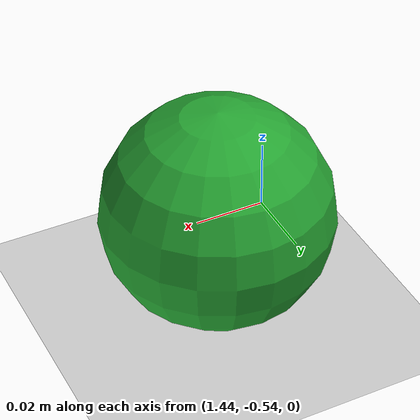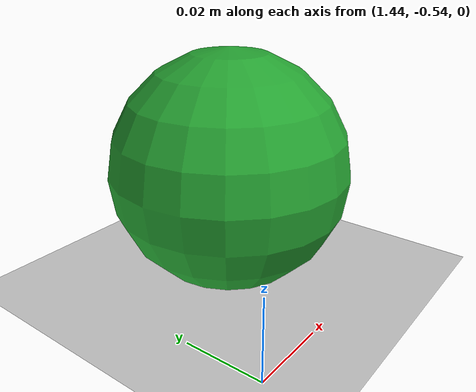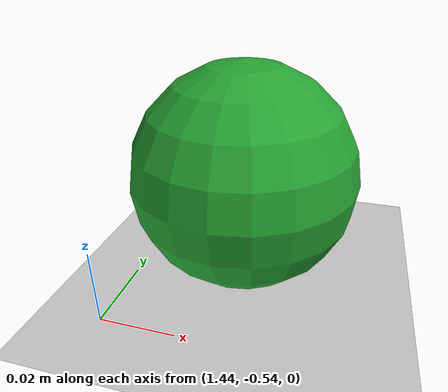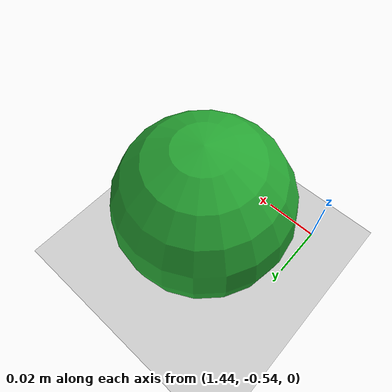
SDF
<sdf version="1.7">
 <world name="default">
  <light name="sun" type="directional">
   <pose>0 0 10 0 -0 0</pose>
   <diffuse>0.8 0.8 0.8 1</diffuse>
   <specular>0.1 0.1 0.1 1</specular>
   <attenuation>
    <range>1000</range>
    <constant>0.9</constant>
    <linear>0.01</linear>
    <quadratic>0.001</quadratic>
   </attenuation>
   <direction>-0.5 0.5 -1</direction>
   <spot><inner_angle>0</inner_angle><outer_angle>0</outer_angle><falloff>0</falloff></spot>
  </light>
  <model name="ground_plane">
   <static>1</static>
   <link name="link">
    <collision name="collision">
     <geometry><plane><normal>0 0 1</normal><size>100 100</size></plane></geometry>
     <surface><friction><ode><mu>100</mu><mu2>50</mu2></ode></friction></surface>
    </collision>
    <visual name="visual">
     <cast_shadows>0</cast_shadows>
     <geometry><plane><normal>0 0 1</normal><size>100 100</size></plane></geometry>
     <material>
      <script><uri>file://media/materials/scripts/gazebo.material</uri><name>Gazebo/Grey</name></script>
     </material>
    </visual>
   </link>
  </model>
  <gravity>0 0 -9.8</gravity>
  <magnetic_field>6e-06 2.3e-05 -4.2e-05</magnetic_field>
  <atmosphere type="adiabatic"/>
  <physics name="default_physics" default="0" type="ode">
   <max_step_size>0.001</max_step_size>
   <real_time_factor>1</real_time_factor>
   <real_time_update_rate>1000</real_time_update_rate>
  </physics>
  <scene><ambient>0.4 0.4 0.4 1</ambient><background>0.7 0.7 0.7 1</background><shadows>1</shadows></scene>
  <spherical_coordinates>
   <surface_model>EARTH_WGS84</surface_model>
   <latitude_deg>0</latitude_deg>
   <longitude_deg>0</longitude_deg>
   <elevation>0</elevation>
   <heading_deg>0</heading_deg>
  </spherical_coordinates>
  <audio><device>default</device></audio>
  <model name="green_ball">
   <link name="link">
    <inertial>
     <mass>0.02</mass>
     <inertia><ixx>7.2e-06</ixx><ixy>0</ixy><ixz>0</ixz><iyy>7.2e-06</iyy><iyz>0</iyz><izz>7.2e-06</izz></inertia>
    </inertial>
    <visual name="visual">
     <geometry><sphere><radius>0.03</radius></sphere></geometry>
     <material>
      <script><name>Gazebo/Green</name><uri>file://media/materials/scripts/gazebo.material</uri></script>
      <shader type="pixel"><normal_map>__default__</normal_map></shader>
      <ambient>0 1 0 1</ambient>
      <diffuse>0 1 0 1</diffuse>
      <specular>0.1 0.1 0.1 1</specular>
      <emissive>0 0 0 1</emissive>
     </material>
    </visual>
    <collision name="collision">
     <geometry><sphere><radius>0.03</radius></sphere></geometry>
     <surface>
      <friction>
       <ode><mu>1</mu><mu2>1</mu2><fdir1>0 0 0</fdir1><slip1>0</slip1><slip2>0</slip2></ode>
       <torsional>
        <coefficient>1</coefficient>
        <patch_radius>0</patch_radius>
        <surface_radius>0</surface_radius>
        <use_patch_radius>1</use_patch_radius>
        <ode><slip>0</slip></ode>
       </torsional>
      </friction>
      <bounce><restitution_coefficient>0</restitution_coefficient><threshold>1e+06</threshold></bounce>
      <contact>
       <collide_without_contact>0</collide_without_contact>
       <collide_without_contact_bitmask>1</collide_without_contact_bitmask>
       <collide_bitmask>1</collide_bitmask>
       <ode>
        <soft_cfm>0</soft_cfm>
        <soft_erp>0.2</soft_erp>
        <kp>1e+13</kp>
        <kd>1</kd>
        <max_vel>0.01</max_vel>
        <min_depth>0</min_depth>
       </ode>
       <bullet>
        <split_impulse>1</split_impulse>
        <split_impulse_penetration_threshold>-0.01</split_impulse_penetration_threshold>
        <soft_cfm>0</soft_cfm>
        <soft_erp>0.2</soft_erp>
        <kp>1e+13</kp>
        <kd>1</kd>
       </bullet>
      </contact>
     </surface>
    </collision>
   </link>
   <static>0</static>
   <pose>1.46921 -0.509175 0.03 0 -0 0</pose>
  </model>
  <model name="green_ball">
   <link name="link">
    <inertial>
     <mass>0.02</mass>
     <inertia><ixx>7.2e-06</ixx><ixy>0</ixy><ixz>0</ixz><iyy>7.2e-06</iyy><iyz>0</iyz><izz>7.2e-06</izz></inertia>
    </inertial>
    <visual name="visual">
     <geometry><sphere><radius>0.03</radius></sphere></geometry>
     <material>
      <script><name>Gazebo/Green</name><uri>file://media/materials/scripts/gazebo.material</uri></script>
      <shader type="pixel"><normal_map>__default__</normal_map></shader>
      <ambient>0 1 0 1</ambient>
      <diffuse>0 1 0 1</diffuse>
      <specular>0.1 0.1 0.1 1</specular>
      <emissive>0 0 0 1</emissive>
     </material>
    </visual>
    <collision name="collision">
     <geometry><sphere><radius>0.03</radius></sphere></geometry>
     <surface>
      <friction>
       <ode><mu>1</mu><mu2>1</mu2><fdir1>0 0 0</fdir1><slip1>0</slip1><slip2>0</slip2></ode>
       <torsional>
        <coefficient>1</coefficient>
        <patch_radius>0</patch_radius>
        <surface_radius>0</surface_radius>
        <use_patch_radius>1</use_patch_radius>
        <ode><slip>0</slip></ode>
       </torsional>
      </friction>
      <bounce><restitution_coefficient>0</restitution_coefficient><threshold>1e+06</threshold></bounce>
      <contact>
       <collide_without_contact>0</collide_without_contact>
       <collide_without_contact_bitmask>1</collide_without_contact_bitmask>
       <collide_bitmask>1</collide_bitmask>
       <ode>
        <soft_cfm>0</soft_cfm>
        <soft_erp>0.2</soft_erp>
        <kp>1e+13</kp>
        <kd>1</kd>
        <max_vel>0.01</max_vel>
        <min_depth>0</min_depth>
       </ode>
       <bullet>
        <split_impulse>1</split_impulse>
        <split_impulse_penetration_threshold>-0.01</split_impulse_penetration_threshold>
        <soft_cfm>0</soft_cfm>
        <soft_erp>0.2</soft_erp>
        <kp>1e+13</kp>
        <kd>1</kd>
       </bullet>
      </contact>
     </surface>
    </collision>
   </link>
   <static>0</static>
   <pose>1.46921 -0.509175 0.03 0 -0 0</pose>
  </model>
  <model name="green_ball">
   <link name="link">
    <inertial>
     <mass>0.02</mass>
     <inertia><ixx>7.2e-06</ixx><ixy>0</ixy><ixz>0</ixz><iyy>7.2e-06</iyy><iyz>0</iyz><izz>7.2e-06</izz></inertia>
    </inertial>
    <visual name="visual">
     <geometry><sphere><radius>0.03</radius></sphere></geometry>
     <material>
      <script><name>Gazebo/Green</name><uri>file://media/materials/scripts/gazebo.material</uri></script>
      <shader type="pixel"><normal_map>__default__</normal_map></shader>
      <ambient>0 1 0 1</ambient>
      <diffuse>0 1 0 1</diffuse>
      <specular>0.1 0.1 0.1 1</specular>
      <emissive>0 0 0 1</emissive>
     </material>
    </visual>
    <collision name="collision">
     <geometry><sphere><radius>0.03</radius></sphere></geometry>
     <surface>
      <friction>
       <ode><mu>1</mu><mu2>1</mu2><fdir1>0 0 0</fdir1><slip1>0</slip1><slip2>0</slip2></ode>
       <torsional>
        <coefficient>1</coefficient>
        <patch_radius>0</patch_radius>
        <surface_radius>0</surface_radius>
        <use_patch_radius>1</use_patch_radius>
        <ode><slip>0</slip></ode>
       </torsional>
      </friction>
      <bounce><restitution_coefficient>0</restitution_coefficient><threshold>1e+06</threshold></bounce>
      <contact>
       <collide_without_contact>0</collide_without_contact>
       <collide_without_contact_bitmask>1</collide_without_contact_bitmask>
       <collide_bitmask>1</collide_bitmask>
       <ode>
        <soft_cfm>0</soft_cfm>
        <soft_erp>0.2</soft_erp>
        <kp>1e+13</kp>
        <kd>1</kd>
        <max_vel>0.01</max_vel>
        <min_depth>0</min_depth>
       </ode>
       <bullet>
        <split_impulse>1</split_impulse>
        <split_impulse_penetration_threshold>-0.01</split_impulse_penetration_threshold>
        <soft_cfm>0</soft_cfm>
        <soft_erp>0.2</soft_erp>
        <kp>1e+13</kp>
        <kd>1</kd>
       </bullet>
      </contact>
     </surface>
    </collision>
   </link>
   <static>0</static>
   <pose>1.46921 -0.509175 0.03 0 -0 0</pose>
  </model>
  <model name="green_ball">
   <link name="link">
    <inertial>
     <mass>0.02</mass>
     <inertia><ixx>7.2e-06</ixx><ixy>0</ixy><ixz>0</ixz><iyy>7.2e-06</iyy><iyz>0</iyz><izz>7.2e-06</izz></inertia>
    </inertial>
    <visual name="visual">
     <geometry><sphere><radius>0.03</radius></sphere></geometry>
     <material>
      <script><name>Gazebo/Green</name><uri>file://media/materials/scripts/gazebo.material</uri></script>
      <shader type="pixel"><normal_map>__default__</normal_map></shader>
      <ambient>0 1 0 1</ambient>
      <diffuse>0 1 0 1</diffuse>
      <specular>0.1 0.1 0.1 1</specular>
      <emissive>0 0 0 1</emissive>
     </material>
    </visual>
    <collision name="collision">
     <geometry><sphere><radius>0.03</radius></sphere></geometry>
     <surface>
      <friction>
       <ode><mu>1</mu><mu2>1</mu2><fdir1>0 0 0</fdir1><slip1>0</slip1><slip2>0</slip2></ode>
       <torsional>
        <coefficient>1</coefficient>
        <patch_radius>0</patch_radius>
        <surface_radius>0</surface_radius>
        <use_patch_radius>1</use_patch_radius>
        <ode><slip>0</slip></ode>
       </torsional>
      </friction>
      <bounce><restitution_coefficient>0</restitution_coefficient><threshold>1e+06</threshold></bounce>
      <contact>
       <collide_without_contact>0</collide_without_contact>
       <collide_without_contact_bitmask>1</collide_without_contact_bitmask>
       <collide_bitmask>1</collide_bitmask>
       <ode>
        <soft_cfm>0</soft_cfm>
        <soft_erp>0.2</soft_erp>
        <kp>1e+13</kp>
        <kd>1</kd>
        <max_vel>0.01</max_vel>
        <min_depth>0</min_depth>
       </ode>
       <bullet>
        <split_impulse>1</split_impulse>
        <split_impulse_penetration_threshold>-0.01</split_impulse_penetration_threshold>
        <soft_cfm>0</soft_cfm>
        <soft_erp>0.2</soft_erp>
        <kp>1e+13</kp>
        <kd>1</kd>
       </bullet>
      </contact>
     </surface>
    </collision>
   </link>
   <static>0</static>
   <pose>1.46921 -0.509175 0.03 0 -0 0</pose>
  </model>
  <light name="user_directional_light_0" type="directional">
   <pose>45.8584 39.5951 1 0 -0 0</pose>
   <diffuse>0.5 0.5 0.5 1</diffuse>
   <specular>0.1 0.1 0.1 1</specular>
   <direction>0.1 0.1 -0.9</direction>
   <attenuation>
    <range>20</range>
    <constant>0.5</constant>
    <linear>0.01</linear>
    <quadratic>0.001</quadratic>
   </attenuation>
  </light>
  <light name="user_directional_light_1" type="directional">
   <pose>38.4575 -41.9597 1 0 -0 0</pose>
   <diffuse>0.5 0.5 0.5 1</diffuse>
   <specular>0.1 0.1 0.1 1</specular>
   <direction>0.1 0.1 -0.9</direction>
   <attenuation>
    <range>20</range>
    <constant>0.5</constant>
    <linear>0.01</linear>
    <quadratic>0.001</quadratic>
   </attenuation>
  </light>
  <light name="user_directional_light_2" type="directional">
   <pose>-12.7105 -27.0796 1 0 -0 0</pose>
   <diffuse>0.5 0.5 0.5 1</diffuse>
   <specular>0.1 0.1 0.1 1</specular>
   <direction>0.1 0.1 -0.9</direction>
   <attenuation>
    <range>20</range>
    <constant>0.5</constant>
    <linear>0.01</linear>
    <quadratic>0.001</quadratic>
   </attenuation>
  </light>
  <light name="user_directional_light_3" type="directional">
   <pose>-14.2214 14.882 1 0 -0 0</pose>
   <diffuse>0.5 0.5 0.5 1</diffuse>
   <specular>0.1 0.1 0.1 1</specular>
   <direction>0.1 0.1 -0.9</direction>
   <attenuation>
    <range>20</range>
    <constant>0.5</constant>
    <linear>0.01</linear>
    <quadratic>0.001</quadratic>
   </attenuation>
  </light>
  <light name="user_directional_light_4" type="directional">
   <pose>13.001 10.7496 1 0 -0 0</pose>
   <diffuse>0.5 0.5 0.5 1</diffuse>
   <specular>0.1 0.1 0.1 1</specular>
   <direction>0.1 0.1 -0.9</direction>
   <attenuation>
    <range>20</range>
    <constant>0.5</constant>
    <linear>0.01</linear>
    <quadratic>0.001</quadratic>
   </attenuation>
  </light>
  <light name="user_directional_light_5" type="directional">
   <pose>15.4043 -13.9342 1 0 -0 0</pose>
   <diffuse>0.5 0.5 0.5 1</diffuse>
   <specular>0.1 0.1 0.1 1</specular>
   <direction>0.1 0.1 -0.9</direction>
   <attenuation>
    <range>20</range>
    <constant>0.5</constant>
    <linear>0.01</linear>
    <quadratic>0.001</quadratic>
   </attenuation>
  </light>
 </world>
</sdf>
